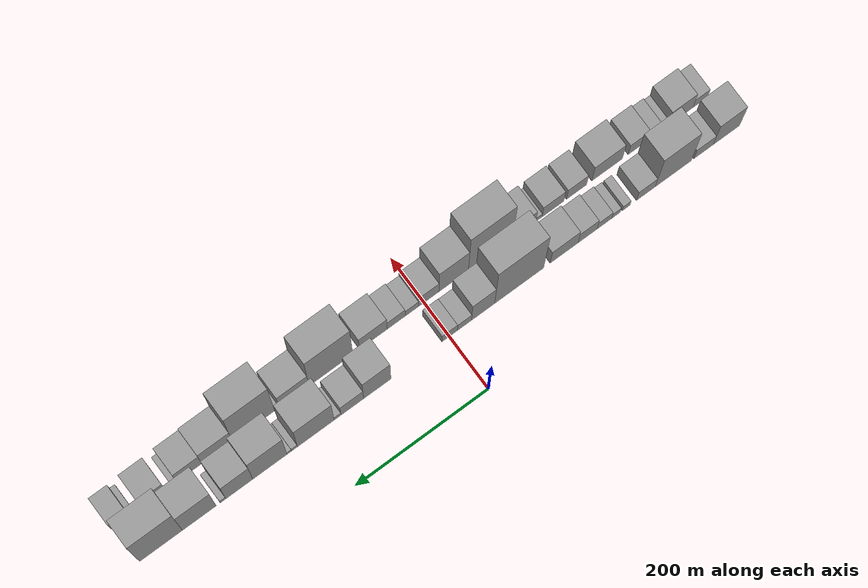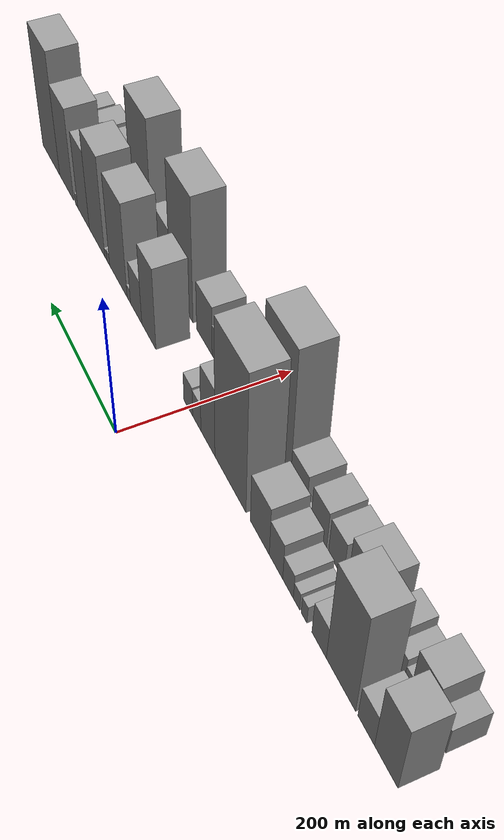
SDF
<sdf version="1.6">
 <world name="default">
  <scene>
   <sky><clouds><speed>12</speed></clouds></sky>
   <ambient>0.4 0.4 0.4 1</ambient>
   <background>0.7 0.7 0.7 1</background>
   <shadows>1</shadows>
  </scene>
  <gravity>0 0 -9.8066</gravity>
  <magnetic_field>6e-06 2.3e-05 -4.2e-05</magnetic_field>
  <physics default="0" name="default_physics" type="ode">
   <ode>
    <solver>
     <type>quick</type>
     <iters>10</iters>
     <sor>1.0</sor>
     <use_dynamic_moi_rescaling>0</use_dynamic_moi_rescaling>
    </solver>
    <constraints>
     <cfm>0</cfm>
     <erp>0.2</erp>
     <contact_max_correcting_vel>100</contact_max_correcting_vel>
     <contact_surface_layer>0.001</contact_surface_layer>
    </constraints>
   </ode>
   <max_step_size>0.004</max_step_size>
   <real_time_factor>1</real_time_factor>
   <real_time_update_rate>250</real_time_update_rate>
  </physics>
  <light name="sun" type="directional">
   <pose>0 0 10 0 0 0</pose>
   <diffuse>0.8 0.8 0.8 1</diffuse>
   <specular>0.2 0.2 0.2 1</specular>
   <attenuation>
    <range>1000</range>
    <constant>0.9</constant>
    <linear>0.01</linear>
    <quadratic>0.001</quadratic>
   </attenuation>
   <direction>-0.5 0.1 -0.9</direction>
  </light>
  <model name="building_1">
   <static>1</static>
   <pose>100.0000 -423.6415 0 0.000000 0.000000 0.000000</pose>
   <link name="link">
    <pose>0 0 52.50 0 0 0</pose>
    <collision name="collision"><geometry><box><size>40.0000 40.7170 105.0000</size></box></geometry></collision>
    <visual name="visual">
     <cast_shadows>0</cast_shadows>
     <geometry><box><size>40.0000 40.7170 105.0000</size></box></geometry>
     <material>
      <script>
       <uri>model://grey_wall/materials/scripts</uri>
       <uri>model://grey_wall/materials/textures</uri>
       <name>vrc/grey_wall</name>
      </script>
     </material>
    </visual>
   </link>
  </model>
  <model name="building_2">
   <static>1</static>
   <pose>100.0000 -388.3384 0 0.000000 0.000000 0.000000</pose>
   <link name="link">
    <pose>0 0 25.50 0 0 0</pose>
    <collision name="collision"><geometry><box><size>40.0000 29.8891 51.0000</size></box></geometry></collision>
    <visual name="visual">
     <cast_shadows>0</cast_shadows>
     <geometry><box><size>40.0000 29.8891 51.0000</size></box></geometry>
     <material>
      <script>
       <uri>model://grey_wall/materials/scripts</uri>
       <uri>model://grey_wall/materials/textures</uri>
       <name>vrc/grey_wall</name>
      </script>
     </material>
    </visual>
   </link>
  </model>
  <model name="building_3">
   <static>1</static>
   <pose>100.0000 -341.6305 0 0.000000 0.000000 0.000000</pose>
   <link name="link">
    <pose>0 0 79.50 0 0 0</pose>
    <collision name="collision"><geometry><box><size>40.0000 55.5266 159.0000</size></box></geometry></collision>
    <visual name="visual">
     <cast_shadows>0</cast_shadows>
     <geometry><box><size>40.0000 55.5266 159.0000</size></box></geometry>
     <material>
      <script>
       <uri>model://grey_wall/materials/scripts</uri>
       <uri>model://grey_wall/materials/textures</uri>
       <name>vrc/grey_wall</name>
      </script>
     </material>
    </visual>
   </link>
  </model>
  <model name="building_4">
   <static>1</static>
   <pose>100.0000 -299.6049 0 0.000000 0.000000 0.000000</pose>
   <link name="link">
    <pose>0 0 25.50 0 0 0</pose>
    <collision name="collision"><geometry><box><size>40.0000 28.5245 51.0000</size></box></geometry></collision>
    <visual name="visual">
     <cast_shadows>0</cast_shadows>
     <geometry><box><size>40.0000 28.5245 51.0000</size></box></geometry>
     <material>
      <script>
       <uri>model://grey_wall/materials/scripts</uri>
       <uri>model://grey_wall/materials/textures</uri>
       <name>vrc/grey_wall</name>
      </script>
     </material>
    </visual>
   </link>
  </model>
  <model name="building_5">
   <static>1</static>
   <pose>100.0000 -269.4798 0 0.000000 0.000000 0.000000</pose>
   <link name="link">
    <pose>0 0 13.50 0 0 0</pose>
    <collision name="collision"><geometry><box><size>40.0000 11.7258 27.0000</size></box></geometry></collision>
    <visual name="visual">
     <cast_shadows>0</cast_shadows>
     <geometry><box><size>40.0000 11.7258 27.0000</size></box></geometry>
     <material>
      <script>
       <uri>model://grey_wall/materials/scripts</uri>
       <uri>model://grey_wall/materials/textures</uri>
       <name>vrc/grey_wall</name>
      </script>
     </material>
    </visual>
   </link>
  </model>
  <model name="building_6">
   <static>1</static>
   <pose>100.0000 -253.9896 0 0.000000 0.000000 0.000000</pose>
   <link name="link">
    <pose>0 0 13.50 0 0 0</pose>
    <collision name="collision"><geometry><box><size>40.0000 13.2545 27.0000</size></box></geometry></collision>
    <visual name="visual">
     <cast_shadows>0</cast_shadows>
     <geometry><box><size>40.0000 13.2545 27.0000</size></box></geometry>
     <material>
      <script>
       <uri>model://grey_wall/materials/scripts</uri>
       <uri>model://grey_wall/materials/textures</uri>
       <name>vrc/grey_wall</name>
      </script>
     </material>
    </visual>
   </link>
  </model>
  <model name="building_7">
   <static>1</static>
   <pose>100.0000 -236.1492 0 0.000000 0.000000 0.000000</pose>
   <link name="link">
    <pose>0 0 19.50 0 0 0</pose>
    <collision name="collision"><geometry><box><size>40.0000 22.4263 39.0000</size></box></geometry></collision>
    <visual name="visual">
     <cast_shadows>0</cast_shadows>
     <geometry><box><size>40.0000 22.4263 39.0000</size></box></geometry>
     <material>
      <script>
       <uri>model://grey_wall/materials/scripts</uri>
       <uri>model://grey_wall/materials/textures</uri>
       <name>vrc/grey_wall</name>
      </script>
     </material>
    </visual>
   </link>
  </model>
  <model name="building_8">
   <static>1</static>
   <pose>100.0000 -210.4014 0 0.000000 0.000000 0.000000</pose>
   <link name="link">
    <pose>0 0 28.50 0 0 0</pose>
    <collision name="collision"><geometry><box><size>40.0000 29.0694 57.0000</size></box></geometry></collision>
    <visual name="visual">
     <cast_shadows>0</cast_shadows>
     <geometry><box><size>40.0000 29.0694 57.0000</size></box></geometry>
     <material>
      <script>
       <uri>model://grey_wall/materials/scripts</uri>
       <uri>model://grey_wall/materials/textures</uri>
       <name>vrc/grey_wall</name>
      </script>
     </material>
    </visual>
   </link>
  </model>
  <model name="building_9">
   <static>1</static>
   <pose>100.0000 -174.6314 0 0.000000 0.000000 0.000000</pose>
   <link name="link">
    <pose>0 0 37.50 0 0 0</pose>
    <collision name="collision"><geometry><box><size>40.0000 42.4706 75.0000</size></box></geometry></collision>
    <visual name="visual">
     <cast_shadows>0</cast_shadows>
     <geometry><box><size>40.0000 42.4706 75.0000</size></box></geometry>
     <material>
      <script>
       <uri>model://grey_wall/materials/scripts</uri>
       <uri>model://grey_wall/materials/textures</uri>
       <name>vrc/grey_wall</name>
      </script>
     </material>
    </visual>
   </link>
  </model>
  <model name="building_10">
   <static>1</static>
   <pose>100.0000 -106.1295 0 0.000000 0.000000 0.000000</pose>
   <link name="link">
    <pose>0 0 105.00 0 0 0</pose>
    <collision name="collision"><geometry><box><size>40.0000 74.5330 210.0000</size></box></geometry></collision>
    <visual name="visual">
     <cast_shadows>0</cast_shadows>
     <geometry><box><size>40.0000 74.5330 210.0000</size></box></geometry>
     <material>
      <script>
       <uri>model://grey_wall/materials/scripts</uri>
       <uri>model://grey_wall/materials/textures</uri>
       <name>vrc/grey_wall</name>
      </script>
     </material>
    </visual>
   </link>
  </model>
  <model name="building_11">
   <static>1</static>
   <pose>100.0000 -51.3325 0 0.000000 0.000000 0.000000</pose>
   <link name="link">
    <pose>0 0 52.50 0 0 0</pose>
    <collision name="collision"><geometry><box><size>40.0000 35.0610 105.0000</size></box></geometry></collision>
    <visual name="visual">
     <cast_shadows>0</cast_shadows>
     <geometry><box><size>40.0000 35.0610 105.0000</size></box></geometry>
     <material>
      <script>
       <uri>model://grey_wall/materials/scripts</uri>
       <uri>model://grey_wall/materials/textures</uri>
       <name>vrc/grey_wall</name>
      </script>
     </material>
    </visual>
   </link>
  </model>
  <model name="building_12">
   <static>1</static>
   <pose>100.0000 -23.1042 0 0.000000 0.000000 0.000000</pose>
   <link name="link">
    <pose>0 0 21.00 0 0 0</pose>
    <collision name="collision"><geometry><box><size>40.0000 21.3956 42.0000</size></box></geometry></collision>
    <visual name="visual">
     <cast_shadows>0</cast_shadows>
     <geometry><box><size>40.0000 21.3956 42.0000</size></box></geometry>
     <material>
      <script>
       <uri>model://grey_wall/materials/scripts</uri>
       <uri>model://grey_wall/materials/textures</uri>
       <name>vrc/grey_wall</name>
      </script>
     </material>
    </visual>
   </link>
  </model>
  <model name="building_13">
   <static>1</static>
   <pose>100.0000 -0.7755 0 0.000000 0.000000 0.000000</pose>
   <link name="link">
    <pose>0 0 22.50 0 0 0</pose>
    <collision name="collision"><geometry><box><size>40.0000 23.2618 45.0000</size></box></geometry></collision>
    <visual name="visual">
     <cast_shadows>0</cast_shadows>
     <geometry><box><size>40.0000 23.2618 45.0000</size></box></geometry>
     <material>
      <script>
       <uri>model://grey_wall/materials/scripts</uri>
       <uri>model://grey_wall/materials/textures</uri>
       <name>vrc/grey_wall</name>
      </script>
     </material>
    </visual>
   </link>
  </model>
  <model name="building_14">
   <static>1</static>
   <pose>100.0000 108.4063 0 0.000000 0.000000 0.000000</pose>
   <link name="link">
    <pose>0 0 61.50 0 0 0</pose>
    <collision name="collision"><geometry><box><size>40.0000 41.0339 123.0000</size></box></geometry></collision>
    <visual name="visual">
     <cast_shadows>0</cast_shadows>
     <geometry><box><size>40.0000 41.0339 123.0000</size></box></geometry>
     <material>
      <script>
       <uri>model://grey_wall/materials/scripts</uri>
       <uri>model://grey_wall/materials/textures</uri>
       <name>vrc/grey_wall</name>
      </script>
     </material>
    </visual>
   </link>
  </model>
  <model name="building_15">
   <static>1</static>
   <pose>100.0000 145.9328 0 0.000000 0.000000 0.000000</pose>
   <link name="link">
    <pose>0 0 33.00 0 0 0</pose>
    <collision name="collision"><geometry><box><size>40.0000 34.0192 66.0000</size></box></geometry></collision>
    <visual name="visual">
     <cast_shadows>0</cast_shadows>
     <geometry><box><size>40.0000 34.0192 66.0000</size></box></geometry>
     <material>
      <script>
       <uri>model://grey_wall/materials/scripts</uri>
       <uri>model://grey_wall/materials/textures</uri>
       <name>vrc/grey_wall</name>
      </script>
     </material>
    </visual>
   </link>
  </model>
  <model name="building_16">
   <static>1</static>
   <pose>100.0000 168.1207 0 0.000000 0.000000 0.000000</pose>
   <link name="link">
    <pose>0 0 10.50 0 0 0</pose>
    <collision name="collision"><geometry><box><size>40.0000 10.3567 21.0000</size></box></geometry></collision>
    <visual name="visual">
     <cast_shadows>0</cast_shadows>
     <geometry><box><size>40.0000 10.3567 21.0000</size></box></geometry>
     <material>
      <script>
       <uri>model://grey_wall/materials/scripts</uri>
       <uri>model://grey_wall/materials/textures</uri>
       <name>vrc/grey_wall</name>
      </script>
     </material>
    </visual>
   </link>
  </model>
  <model name="building_17">
   <static>1</static>
   <pose>100.0000 200.7547 0 0.000000 0.000000 0.000000</pose>
   <link name="link">
    <pose>0 0 70.50 0 0 0</pose>
    <collision name="collision"><geometry><box><size>40.0000 54.9112 141.0000</size></box></geometry></collision>
    <visual name="visual">
     <cast_shadows>0</cast_shadows>
     <geometry><box><size>40.0000 54.9112 141.0000</size></box></geometry>
     <material>
      <script>
       <uri>model://grey_wall/materials/scripts</uri>
       <uri>model://grey_wall/materials/textures</uri>
       <name>vrc/grey_wall</name>
      </script>
     </material>
    </visual>
   </link>
  </model>
  <model name="building_18">
   <static>1</static>
   <pose>100.0000 232.6507 0 0.000000 0.000000 0.000000</pose>
   <link name="link">
    <pose>0 0 9.00 0 0 0</pose>
    <collision name="collision"><geometry><box><size>40.0000 8.8807 18.0000</size></box></geometry></collision>
    <visual name="visual">
     <cast_shadows>0</cast_shadows>
     <geometry><box><size>40.0000 8.8807 18.0000</size></box></geometry>
     <material>
      <script>
       <uri>model://grey_wall/materials/scripts</uri>
       <uri>model://grey_wall/materials/textures</uri>
       <name>vrc/grey_wall</name>
      </script>
     </material>
    </visual>
   </link>
  </model>
  <model name="building_19">
   <static>1</static>
   <pose>100.0000 240.5193 0 0.000000 0.000000 0.000000</pose>
   <link name="link">
    <pose>0 0 7.50 0 0 0</pose>
    <collision name="collision"><geometry><box><size>40.0000 6.8565 15.0000</size></box></geometry></collision>
    <visual name="visual">
     <cast_shadows>0</cast_shadows>
     <geometry><box><size>40.0000 6.8565 15.0000</size></box></geometry>
     <material>
      <script>
       <uri>model://grey_wall/materials/scripts</uri>
       <uri>model://grey_wall/materials/textures</uri>
       <name>vrc/grey_wall</name>
      </script>
     </material>
    </visual>
   </link>
  </model>
  <model name="building_20">
   <static>1</static>
   <pose>100.0000 269.4308 0 0.000000 0.000000 0.000000</pose>
   <link name="link">
    <pose>0 0 75.00 0 0 0</pose>
    <collision name="collision"><geometry><box><size>40.0000 50.9667 150.0000</size></box></geometry></collision>
    <visual name="visual">
     <cast_shadows>0</cast_shadows>
     <geometry><box><size>40.0000 50.9667 150.0000</size></box></geometry>
     <material>
      <script>
       <uri>model://grey_wall/materials/scripts</uri>
       <uri>model://grey_wall/materials/textures</uri>
       <name>vrc/grey_wall</name>
      </script>
     </material>
    </visual>
   </link>
  </model>
  <model name="building_21">
   <static>1</static>
   <pose>100.0000 315.0337 0 0.000000 0.000000 0.000000</pose>
   <link name="link">
    <pose>0 0 58.50 0 0 0</pose>
    <collision name="collision"><geometry><box><size>40.0000 40.2392 117.0000</size></box></geometry></collision>
    <visual name="visual">
     <cast_shadows>0</cast_shadows>
     <geometry><box><size>40.0000 40.2392 117.0000</size></box></geometry>
     <material>
      <script>
       <uri>model://grey_wall/materials/scripts</uri>
       <uri>model://grey_wall/materials/textures</uri>
       <name>vrc/grey_wall</name>
      </script>
     </material>
    </visual>
   </link>
  </model>
  <model name="building_22">
   <static>1</static>
   <pose>100.0000 339.3226 0 0.000000 0.000000 0.000000</pose>
   <link name="link">
    <pose>0 0 9.00 0 0 0</pose>
    <collision name="collision"><geometry><box><size>40.0000 8.3386 18.0000</size></box></geometry></collision>
    <visual name="visual">
     <cast_shadows>0</cast_shadows>
     <geometry><box><size>40.0000 8.3386 18.0000</size></box></geometry>
     <material>
      <script>
       <uri>model://grey_wall/materials/scripts</uri>
       <uri>model://grey_wall/materials/textures</uri>
       <name>vrc/grey_wall</name>
      </script>
     </material>
    </visual>
   </link>
  </model>
  <model name="building_23">
   <static>1</static>
   <pose>100.0000 374.5627 0 0.000000 0.000000 0.000000</pose>
   <link name="link">
    <pose>0 0 69.00 0 0 0</pose>
    <collision name="collision"><geometry><box><size>40.0000 50.1415 138.0000</size></box></geometry></collision>
    <visual name="visual">
     <cast_shadows>0</cast_shadows>
     <geometry><box><size>40.0000 50.1415 138.0000</size></box></geometry>
     <material>
      <script>
       <uri>model://grey_wall/materials/scripts</uri>
       <uri>model://grey_wall/materials/textures</uri>
       <name>vrc/grey_wall</name>
      </script>
     </material>
    </visual>
   </link>
  </model>
  <model name="building_24">
   <static>1</static>
   <pose>100.0000 431.3692 0 0.000000 0.000000 0.000000</pose>
   <link name="link">
    <pose>0 0 91.50 0 0 0</pose>
    <collision name="collision"><geometry><box><size>40.0000 63.4715 183.0000</size></box></geometry></collision>
    <visual name="visual">
     <cast_shadows>0</cast_shadows>
     <geometry><box><size>40.0000 63.4715 183.0000</size></box></geometry>
     <material>
      <script>
       <uri>model://grey_wall/materials/scripts</uri>
       <uri>model://grey_wall/materials/textures</uri>
       <name>vrc/grey_wall</name>
      </script>
     </material>
    </visual>
   </link>
  </model>
  <model name="building_25">
   <static>1</static>
   <pose>152.0000 -422.6725 0 0.000000 0.000000 0.000000</pose>
   <link name="link">
    <pose>0 0 21.00 0 0 0</pose>
    <collision name="collision"><geometry><box><size>40.0000 22.6551 42.0000</size></box></geometry></collision>
    <visual name="visual">
     <cast_shadows>0</cast_shadows>
     <geometry><box><size>40.0000 22.6551 42.0000</size></box></geometry>
     <material>
      <script>
       <uri>model://grey_wall/materials/scripts</uri>
       <uri>model://grey_wall/materials/textures</uri>
       <name>vrc/grey_wall</name>
      </script>
     </material>
    </visual>
   </link>
  </model>
  <model name="building_26">
   <static>1</static>
   <pose>152.0000 -392.2573 0 0.000000 0.000000 0.000000</pose>
   <link name="link">
    <pose>0 0 37.50 0 0 0</pose>
    <collision name="collision"><geometry><box><size>40.0000 38.1754 75.0000</size></box></geometry></collision>
    <visual name="visual">
     <cast_shadows>0</cast_shadows>
     <geometry><box><size>40.0000 38.1754 75.0000</size></box></geometry>
     <material>
      <script>
       <uri>model://grey_wall/materials/scripts</uri>
       <uri>model://grey_wall/materials/textures</uri>
       <name>vrc/grey_wall</name>
      </script>
     </material>
    </visual>
   </link>
  </model>
  <model name="building_27">
   <static>1</static>
   <pose>152.0000 -367.5108 0 0.000000 0.000000 0.000000</pose>
   <link name="link">
    <pose>0 0 13.50 0 0 0</pose>
    <collision name="collision"><geometry><box><size>40.0000 11.3175 27.0000</size></box></geometry></collision>
    <visual name="visual">
     <cast_shadows>0</cast_shadows>
     <geometry><box><size>40.0000 11.3175 27.0000</size></box></geometry>
     <material>
      <script>
       <uri>model://grey_wall/materials/scripts</uri>
       <uri>model://grey_wall/materials/textures</uri>
       <name>vrc/grey_wall</name>
      </script>
     </material>
    </visual>
   </link>
  </model>
  <model name="building_28">
   <static>1</static>
   <pose>152.0000 -352.0745 0 0.000000 0.000000 0.000000</pose>
   <link name="link">
    <pose>0 0 19.50 0 0 0</pose>
    <collision name="collision"><geometry><box><size>40.0000 19.5550 39.0000</size></box></geometry></collision>
    <visual name="visual">
     <cast_shadows>0</cast_shadows>
     <geometry><box><size>40.0000 19.5550 39.0000</size></box></geometry>
     <material>
      <script>
       <uri>model://grey_wall/materials/scripts</uri>
       <uri>model://grey_wall/materials/textures</uri>
       <name>vrc/grey_wall</name>
      </script>
     </material>
    </visual>
   </link>
  </model>
  <model name="building_29">
   <static>1</static>
   <pose>152.0000 -326.9321 0 0.000000 0.000000 0.000000</pose>
   <link name="link">
    <pose>0 0 27.00 0 0 0</pose>
    <collision name="collision"><geometry><box><size>40.0000 30.7299 54.0000</size></box></geometry></collision>
    <visual name="visual">
     <cast_shadows>0</cast_shadows>
     <geometry><box><size>40.0000 30.7299 54.0000</size></box></geometry>
     <material>
      <script>
       <uri>model://grey_wall/materials/scripts</uri>
       <uri>model://grey_wall/materials/textures</uri>
       <name>vrc/grey_wall</name>
      </script>
     </material>
    </visual>
   </link>
  </model>
  <model name="building_30">
   <static>1</static>
   <pose>152.0000 -279.1630 0 0.000000 0.000000 0.000000</pose>
   <link name="link">
    <pose>0 0 40.50 0 0 0</pose>
    <collision name="collision"><geometry><box><size>40.0000 46.8082 81.0000</size></box></geometry></collision>
    <visual name="visual">
     <cast_shadows>0</cast_shadows>
     <geometry><box><size>40.0000 46.8082 81.0000</size></box></geometry>
     <material>
      <script>
       <uri>model://grey_wall/materials/scripts</uri>
       <uri>model://grey_wall/materials/textures</uri>
       <name>vrc/grey_wall</name>
      </script>
     </material>
    </visual>
   </link>
  </model>
  <model name="building_31">
   <static>1</static>
   <pose>152.0000 -232.3801 0 0.000000 0.000000 0.000000</pose>
   <link name="link">
    <pose>0 0 28.50 0 0 0</pose>
    <collision name="collision"><geometry><box><size>40.0000 30.7576 57.0000</size></box></geometry></collision>
    <visual name="visual">
     <cast_shadows>0</cast_shadows>
     <geometry><box><size>40.0000 30.7576 57.0000</size></box></geometry>
     <material>
      <script>
       <uri>model://grey_wall/materials/scripts</uri>
       <uri>model://grey_wall/materials/textures</uri>
       <name>vrc/grey_wall</name>
      </script>
     </material>
    </visual>
   </link>
  </model>
  <model name="building_32">
   <static>1</static>
   <pose>152.0000 -196.3174 0 0.000000 0.000000 0.000000</pose>
   <link name="link">
    <pose>0 0 30.00 0 0 0</pose>
    <collision name="collision"><geometry><box><size>40.0000 33.3678 60.0000</size></box></geometry></collision>
    <visual name="visual">
     <cast_shadows>0</cast_shadows>
     <geometry><box><size>40.0000 33.3678 60.0000</size></box></geometry>
     <material>
      <script>
       <uri>model://grey_wall/materials/scripts</uri>
       <uri>model://grey_wall/materials/textures</uri>
       <name>vrc/grey_wall</name>
      </script>
     </material>
    </visual>
   </link>
  </model>
  <model name="building_33">
   <static>1</static>
   <pose>152.0000 -175.0496 0 0.000000 0.000000 0.000000</pose>
   <link name="link">
    <pose>0 0 10.50 0 0 0</pose>
    <collision name="collision"><geometry><box><size>40.0000 9.1676 21.0000</size></box></geometry></collision>
    <visual name="visual">
     <cast_shadows>0</cast_shadows>
     <geometry><box><size>40.0000 9.1676 21.0000</size></box></geometry>
     <material>
      <script>
       <uri>model://grey_wall/materials/scripts</uri>
       <uri>model://grey_wall/materials/textures</uri>
       <name>vrc/grey_wall</name>
      </script>
     </material>
    </visual>
   </link>
  </model>
  <model name="building_34">
   <static>1</static>
   <pose>152.0000 -152.5727 0 0.000000 0.000000 0.000000</pose>
   <link name="link">
    <pose>0 0 31.50 0 0 0</pose>
    <collision name="collision"><geometry><box><size>40.0000 35.7864 63.0000</size></box></geometry></collision>
    <visual name="visual">
     <cast_shadows>0</cast_shadows>
     <geometry><box><size>40.0000 35.7864 63.0000</size></box></geometry>
     <material>
      <script>
       <uri>model://grey_wall/materials/scripts</uri>
       <uri>model://grey_wall/materials/textures</uri>
       <name>vrc/grey_wall</name>
      </script>
     </material>
    </visual>
   </link>
  </model>
  <model name="building_35">
   <static>1</static>
   <pose>152.0000 -101.0855 0 0.000000 0.000000 0.000000</pose>
   <link name="link">
    <pose>0 0 103.50 0 0 0</pose>
    <collision name="collision"><geometry><box><size>40.0000 67.1880 207.0000</size></box></geometry></collision>
    <visual name="visual">
     <cast_shadows>0</cast_shadows>
     <geometry><box><size>40.0000 67.1880 207.0000</size></box></geometry>
     <material>
      <script>
       <uri>model://grey_wall/materials/scripts</uri>
       <uri>model://grey_wall/materials/textures</uri>
       <name>vrc/grey_wall</name>
      </script>
     </material>
    </visual>
   </link>
  </model>
  <model name="building_36">
   <static>1</static>
   <pose>152.0000 -45.1447 0 0.000000 0.000000 0.000000</pose>
   <link name="link">
    <pose>0 0 63.00 0 0 0</pose>
    <collision name="collision"><geometry><box><size>40.0000 44.6934 126.0000</size></box></geometry></collision>
    <visual name="visual">
     <cast_shadows>0</cast_shadows>
     <geometry><box><size>40.0000 44.6934 126.0000</size></box></geometry>
     <material>
      <script>
       <uri>model://grey_wall/materials/scripts</uri>
       <uri>model://grey_wall/materials/textures</uri>
       <name>vrc/grey_wall</name>
      </script>
     </material>
    </visual>
   </link>
  </model>
  <model name="building_37">
   <static>1</static>
   <pose>152.0000 -7.4233 0 0.000000 0.000000 0.000000</pose>
   <link name="link">
    <pose>0 0 30.00 0 0 0</pose>
    <collision name="collision"><geometry><box><size>40.0000 30.7495 60.0000</size></box></geometry></collision>
    <visual name="visual">
     <cast_shadows>0</cast_shadows>
     <geometry><box><size>40.0000 30.7495 60.0000</size></box></geometry>
     <material>
      <script>
       <uri>model://grey_wall/materials/scripts</uri>
       <uri>model://grey_wall/materials/textures</uri>
       <name>vrc/grey_wall</name>
      </script>
     </material>
    </visual>
   </link>
  </model>
  <model name="building_38">
   <static>1</static>
   <pose>152.0000 18.1322 0 0.000000 0.000000 0.000000</pose>
   <link name="link">
    <pose>0 0 18.00 0 0 0</pose>
    <collision name="collision"><geometry><box><size>40.0000 20.3615 36.0000</size></box></geometry></collision>
    <visual name="visual">
     <cast_shadows>0</cast_shadows>
     <geometry><box><size>40.0000 20.3615 36.0000</size></box></geometry>
     <material>
      <script>
       <uri>model://grey_wall/materials/scripts</uri>
       <uri>model://grey_wall/materials/textures</uri>
       <name>vrc/grey_wall</name>
      </script>
     </material>
    </visual>
   </link>
  </model>
  <model name="building_39">
   <static>1</static>
   <pose>152.0000 41.8634 0 0.000000 0.000000 0.000000</pose>
   <link name="link">
    <pose>0 0 24.00 0 0 0</pose>
    <collision name="collision"><geometry><box><size>40.0000 27.1009 48.0000</size></box></geometry></collision>
    <visual name="visual">
     <cast_shadows>0</cast_shadows>
     <geometry><box><size>40.0000 27.1009 48.0000</size></box></geometry>
     <material>
      <script>
       <uri>model://grey_wall/materials/scripts</uri>
       <uri>model://grey_wall/materials/textures</uri>
       <name>vrc/grey_wall</name>
      </script>
     </material>
    </visual>
   </link>
  </model>
  <model name="building_40">
   <static>1</static>
   <pose>152.0000 76.3838 0 0.000000 0.000000 0.000000</pose>
   <link name="link">
    <pose>0 0 37.50 0 0 0</pose>
    <collision name="collision"><geometry><box><size>40.0000 41.9399 75.0000</size></box></geometry></collision>
    <visual name="visual">
     <cast_shadows>0</cast_shadows>
     <geometry><box><size>40.0000 41.9399 75.0000</size></box></geometry>
     <material>
      <script>
       <uri>model://grey_wall/materials/scripts</uri>
       <uri>model://grey_wall/materials/textures</uri>
       <name>vrc/grey_wall</name>
      </script>
     </material>
    </visual>
   </link>
  </model>
  <model name="building_41">
   <static>1</static>
   <pose>152.0000 140.1983 0 0.000000 0.000000 0.000000</pose>
   <link name="link">
    <pose>0 0 93.00 0 0 0</pose>
    <collision name="collision"><geometry><box><size>40.0000 65.6891 186.0000</size></box></geometry></collision>
    <visual name="visual">
     <cast_shadows>0</cast_shadows>
     <geometry><box><size>40.0000 65.6891 186.0000</size></box></geometry>
     <material>
      <script>
       <uri>model://grey_wall/materials/scripts</uri>
       <uri>model://grey_wall/materials/textures</uri>
       <name>vrc/grey_wall</name>
      </script>
     </material>
    </visual>
   </link>
  </model>
  <model name="building_42">
   <static>1</static>
   <pose>152.0000 195.5793 0 0.000000 0.000000 0.000000</pose>
   <link name="link">
    <pose>0 0 42.00 0 0 0</pose>
    <collision name="collision"><geometry><box><size>40.0000 45.0729 84.0000</size></box></geometry></collision>
    <visual name="visual">
     <cast_shadows>0</cast_shadows>
     <geometry><box><size>40.0000 45.0729 84.0000</size></box></geometry>
     <material>
      <script>
       <uri>model://grey_wall/materials/scripts</uri>
       <uri>model://grey_wall/materials/textures</uri>
       <name>vrc/grey_wall</name>
      </script>
     </material>
    </visual>
   </link>
  </model>
  <model name="building_43">
   <static>1</static>
   <pose>152.0000 221.4588 0 0.000000 0.000000 0.000000</pose>
   <link name="link">
    <pose>0 0 7.50 0 0 0</pose>
    <collision name="collision"><geometry><box><size>40.0000 6.6861 15.0000</size></box></geometry></collision>
    <visual name="visual">
     <cast_shadows>0</cast_shadows>
     <geometry><box><size>40.0000 6.6861 15.0000</size></box></geometry>
     <material>
      <script>
       <uri>model://grey_wall/materials/scripts</uri>
       <uri>model://grey_wall/materials/textures</uri>
       <name>vrc/grey_wall</name>
      </script>
     </material>
    </visual>
   </link>
  </model>
  <model name="building_44">
   <static>1</static>
   <pose>152.0000 256.2343 0 0.000000 0.000000 0.000000</pose>
   <link name="link">
    <pose>0 0 99.00 0 0 0</pose>
    <collision name="collision"><geometry><box><size>40.0000 62.8648 198.0000</size></box></geometry></collision>
    <visual name="visual">
     <cast_shadows>0</cast_shadows>
     <geometry><box><size>40.0000 62.8648 198.0000</size></box></geometry>
     <material>
      <script>
       <uri>model://grey_wall/materials/scripts</uri>
       <uri>model://grey_wall/materials/textures</uri>
       <name>vrc/grey_wall</name>
      </script>
     </material>
    </visual>
   </link>
  </model>
  <model name="building_45">
   <static>1</static>
   <pose>152.0000 310.7594 0 0.000000 0.000000 0.000000</pose>
   <link name="link">
    <pose>0 0 42.00 0 0 0</pose>
    <collision name="collision"><geometry><box><size>40.0000 46.1854 84.0000</size></box></geometry></collision>
    <visual name="visual">
     <cast_shadows>0</cast_shadows>
     <geometry><box><size>40.0000 46.1854 84.0000</size></box></geometry>
     <material>
      <script>
       <uri>model://grey_wall/materials/scripts</uri>
       <uri>model://grey_wall/materials/textures</uri>
       <name>vrc/grey_wall</name>
      </script>
     </material>
    </visual>
   </link>
  </model>
  <model name="building_46">
   <static>1</static>
   <pose>152.0000 352.5841 0 0.000000 0.000000 0.000000</pose>
   <link name="link">
    <pose>0 0 36.00 0 0 0</pose>
    <collision name="collision"><geometry><box><size>40.0000 37.4640 72.0000</size></box></geometry></collision>
    <visual name="visual">
     <cast_shadows>0</cast_shadows>
     <geometry><box><size>40.0000 37.4640 72.0000</size></box></geometry>
     <material>
      <script>
       <uri>model://grey_wall/materials/scripts</uri>
       <uri>model://grey_wall/materials/textures</uri>
       <name>vrc/grey_wall</name>
      </script>
     </material>
    </visual>
   </link>
  </model>
  <model name="building_47">
   <static>1</static>
   <pose>152.0000 375.0906 0 0.000000 0.000000 0.000000</pose>
   <link name="link">
    <pose>0 0 9.00 0 0 0</pose>
    <collision name="collision"><geometry><box><size>40.0000 7.5490 18.0000</size></box></geometry></collision>
    <visual name="visual">
     <cast_shadows>0</cast_shadows>
     <geometry><box><size>40.0000 7.5490 18.0000</size></box></geometry>
     <material>
      <script>
       <uri>model://grey_wall/materials/scripts</uri>
       <uri>model://grey_wall/materials/textures</uri>
       <name>vrc/grey_wall</name>
      </script>
     </material>
    </visual>
   </link>
  </model>
  <model name="building_48">
   <static>1</static>
   <pose>152.0000 405.6452 0 0.000000 0.000000 0.000000</pose>
   <link name="link">
    <pose>0 0 31.50 0 0 0</pose>
    <collision name="collision"><geometry><box><size>40.0000 35.5602 63.0000</size></box></geometry></collision>
    <visual name="visual">
     <cast_shadows>0</cast_shadows>
     <geometry><box><size>40.0000 35.5602 63.0000</size></box></geometry>
     <material>
      <script>
       <uri>model://grey_wall/materials/scripts</uri>
       <uri>model://grey_wall/materials/textures</uri>
       <name>vrc/grey_wall</name>
      </script>
     </material>
    </visual>
   </link>
  </model>
  <model name="building_49">
   <static>1</static>
   <pose>152.0000 437.1688 0 0.000000 0.000000 0.000000</pose>
   <link name="link">
    <pose>0 0 7.50 0 0 0</pose>
    <collision name="collision"><geometry><box><size>40.0000 7.4871 15.0000</size></box></geometry></collision>
    <visual name="visual">
     <cast_shadows>0</cast_shadows>
     <geometry><box><size>40.0000 7.4871 15.0000</size></box></geometry>
     <material>
      <script>
       <uri>model://grey_wall/materials/scripts</uri>
       <uri>model://grey_wall/materials/textures</uri>
       <name>vrc/grey_wall</name>
      </script>
     </material>
    </visual>
   </link>
  </model>
  <model name="building_50">
   <static>1</static>
   <pose>152.0000 454.5965 0 0.000000 0.000000 0.000000</pose>
   <link name="link">
    <pose>0 0 25.50 0 0 0</pose>
    <collision name="collision"><geometry><box><size>40.0000 27.3682 51.0000</size></box></geometry></collision>
    <visual name="visual">
     <cast_shadows>0</cast_shadows>
     <geometry><box><size>40.0000 27.3682 51.0000</size></box></geometry>
     <material>
      <script>
       <uri>model://grey_wall/materials/scripts</uri>
       <uri>model://grey_wall/materials/textures</uri>
       <name>vrc/grey_wall</name>
      </script>
     </material>
    </visual>
   </link>
  </model>
 </world>
</sdf>
